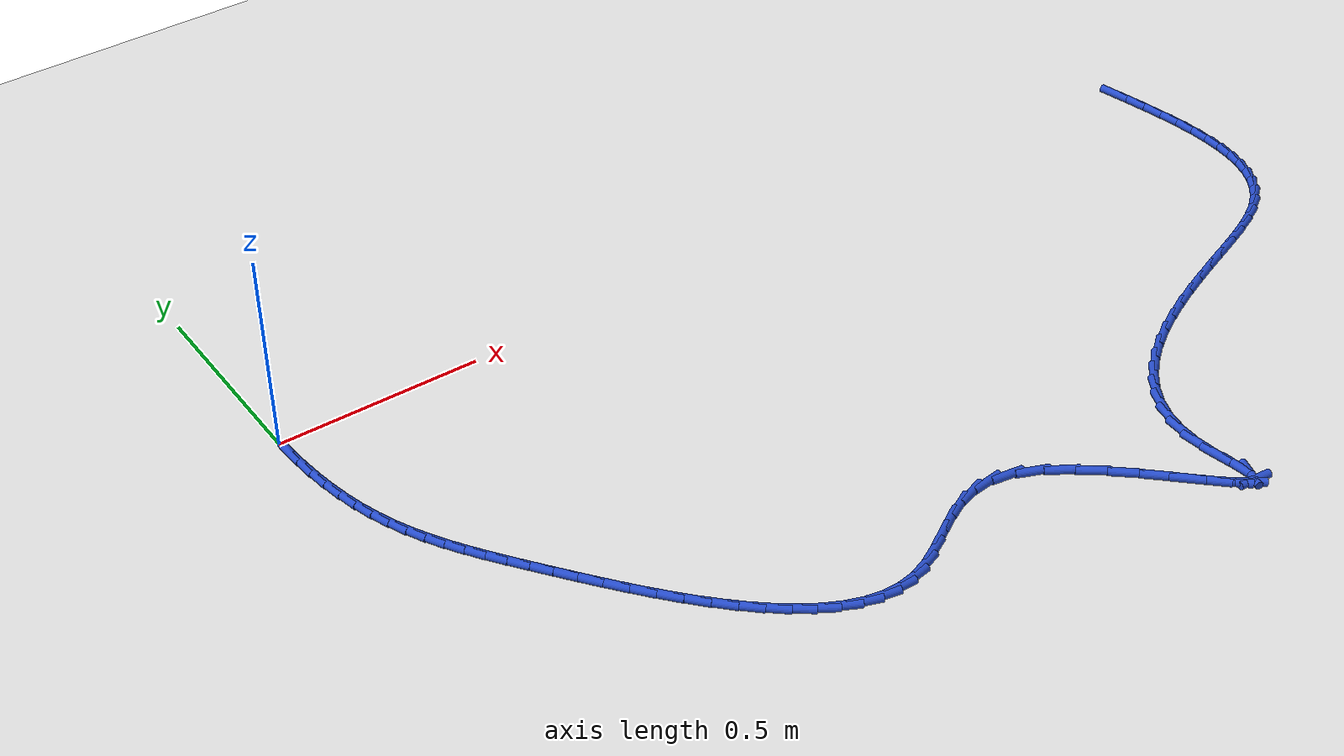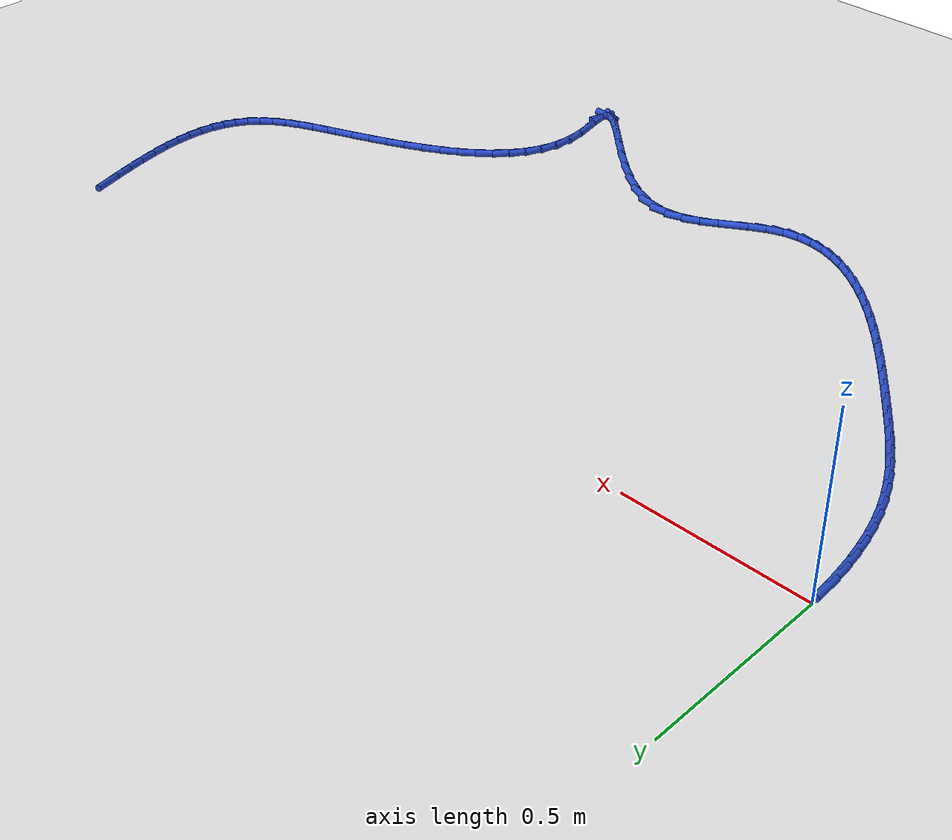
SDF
<sdf version="1.6">
 <world name="default">
  <model name="ground_plane">
   <static>1</static>
   <link name="link">
    <collision name="collision">
     <geometry><plane><normal>0 0 1</normal><size>100 100</size></plane></geometry>
     <surface><friction><ode><mu>100</mu><mu2>50</mu2></ode></friction></surface>
    </collision>
    <visual name="visual">
     <cast_shadows>0</cast_shadows>
     <geometry><plane><normal>0 0 1</normal><size>100 100</size></plane></geometry>
     <material>
      <script><uri>file://media/materials/scripts/gazebo.material</uri><name>Gazebo/WhiteGlow</name></script>
     </material>
    </visual>
   </link>
  </model>
  <model name="line">
   <link name="link_84">
    <pose>2.407412451320678 -0.029367058300199554 0.01 0 1.57 -1.3262022830353422</pose>
    <collision name="collision">
     <geometry><cylinder><radius>0.01</radius><length>0.08</length></cylinder></geometry>
    </collision>
    <visual name="visual">
     <material>
      <script><name>Gazebo/Blue</name><uri>file://media/materials/scripts/gazebo.material</uri></script>
     </material>
     <geometry><cylinder><radius>0.01</radius><length>0.08</length></cylinder></geometry>
    </visual>
   </link>
   <link name="link_85">
    <pose>2.420557343026698 -0.08203270582056749 0.01 0 1.57 -1.3414787079102308</pose>
    <collision name="collision">
     <geometry><cylinder><radius>0.01</radius><length>0.08</length></cylinder></geometry>
    </collision>
    <visual name="visual">
     <material>
      <script><name>Gazebo/Blue</name><uri>file://media/materials/scripts/gazebo.material</uri></script>
     </material>
     <geometry><cylinder><radius>0.01</radius><length>0.08</length></cylinder></geometry>
    </visual>
   </link>
   <link name="link_86">
    <pose>2.4325047693627733 -0.13321614203620766 0.01 0 1.57 -1.3643246047842637</pose>
    <collision name="collision">
     <geometry><cylinder><radius>0.01</radius><length>0.08</length></cylinder></geometry>
    </collision>
    <visual name="visual">
     <material>
      <script><name>Gazebo/Blue</name><uri>file://media/materials/scripts/gazebo.material</uri></script>
     </material>
     <geometry><cylinder><radius>0.01</radius><length>0.08</length></cylinder></geometry>
    </visual>
   </link>
   <link name="link_87">
    <pose>2.442894268546636 -0.18281829103592753 0.01 0 1.57 -1.395834255935096</pose>
    <collision name="collision">
     <geometry><cylinder><radius>0.01</radius><length>0.08</length></cylinder></geometry>
    </collision>
    <visual name="visual">
     <material>
      <script><name>Gazebo/Blue</name><uri>file://media/materials/scripts/gazebo.material</uri></script>
     </material>
     <geometry><cylinder><radius>0.01</radius><length>0.08</length></cylinder></geometry>
    </visual>
   </link>
   <link name="link_88">
    <pose>2.451365378796018 -0.23074007690853465 0.01 0 1.57 -1.437394287183724</pose>
    <collision name="collision">
     <geometry><cylinder><radius>0.01</radius><length>0.08</length></cylinder></geometry>
    </collision>
    <visual name="visual">
     <material>
      <script><name>Gazebo/Blue</name><uri>file://media/materials/scripts/gazebo.material</uri></script>
     </material>
     <geometry><cylinder><radius>0.01</radius><length>0.08</length></cylinder></geometry>
    </visual>
   </link>
   <link name="link_89">
    <pose>2.4575576383286513 -0.2768824237428374 0.01 0 1.57 -1.4907005499231647</pose>
    <collision name="collision">
     <geometry><cylinder><radius>0.01</radius><length>0.08</length></cylinder></geometry>
    </collision>
    <visual name="visual">
     <material>
      <script><name>Gazebo/Blue</name><uri>file://media/materials/scripts/gazebo.material</uri></script>
     </material>
     <geometry><cylinder><radius>0.01</radius><length>0.08</length></cylinder></geometry>
    </visual>
   </link>
   <link name="link_90">
    <pose>2.4611105853622677 -0.32114625562764143 0.01 0 1.57 -1.5577154478244069</pose>
    <collision name="collision">
     <geometry><cylinder><radius>0.01</radius><length>0.08</length></cylinder></geometry>
    </collision>
    <visual name="visual">
     <material>
      <script><name>Gazebo/Blue</name><uri>file://media/materials/scripts/gazebo.material</uri></script>
     </material>
     <geometry><cylinder><radius>0.01</radius><length>0.08</length></cylinder></geometry>
    </visual>
   </link>
   <link name="link_91">
    <pose>2.4616637581145993 -0.36343249665175537 0.01 0 1.57 1.5010985861466253</pose>
    <collision name="collision">
     <geometry><cylinder><radius>0.01</radius><length>0.08</length></cylinder></geometry>
    </collision>
    <visual name="visual">
     <material>
      <script><name>Gazebo/Blue</name><uri>file://media/materials/scripts/gazebo.material</uri></script>
     </material>
     <geometry><cylinder><radius>0.01</radius><length>0.08</length></cylinder></geometry>
    </visual>
   </link>
   <link name="link_92">
    <pose>2.4588566948033788 -0.40364207090398674 0.01 0 1.57 1.4008220073298887</pose>
    <collision name="collision">
     <geometry><cylinder><radius>0.01</radius><length>0.08</length></cylinder></geometry>
    </collision>
    <visual name="visual">
     <material>
      <script><name>Gazebo/Blue</name><uri>file://media/materials/scripts/gazebo.material</uri></script>
     </material>
     <geometry><cylinder><radius>0.01</radius><length>0.08</length></cylinder></geometry>
    </visual>
   </link>
   <link name="link_93">
    <pose>2.452328933646337 -0.4416759024731428 0.01 0 1.57 1.2823898041812418</pose>
    <collision name="collision">
     <geometry><cylinder><radius>0.01</radius><length>0.08</length></cylinder></geometry>
    </collision>
    <visual name="visual">
     <material>
      <script><name>Gazebo/Blue</name><uri>file://media/materials/scripts/gazebo.material</uri></script>
     </material>
     <geometry><cylinder><radius>0.01</radius><length>0.08</length></cylinder></geometry>
    </visual>
   </link>
   <link name="link_94">
    <pose>2.4417200128612064 -0.47743491544803196 0.01 0 1.57 1.1472641055934394</pose>
    <collision name="collision">
     <geometry><cylinder><radius>0.01</radius><length>0.08</length></cylinder></geometry>
    </collision>
    <visual name="visual">
     <material>
      <script><name>Gazebo/Blue</name><uri>file://media/materials/scripts/gazebo.material</uri></script>
     </material>
     <geometry><cylinder><radius>0.01</radius><length>0.08</length></cylinder></geometry>
    </visual>
   </link>
   <link name="link_95">
    <pose>2.4266694706657193 -0.5108200339174603 0.01 0 1.57 0.999904639473002</pose>
    <collision name="collision">
     <geometry><cylinder><radius>0.01</radius><length>0.08</length></cylinder></geometry>
    </collision>
    <visual name="visual">
     <material>
      <script><name>Gazebo/Blue</name><uri>file://media/materials/scripts/gazebo.material</uri></script>
     </material>
     <geometry><cylinder><radius>0.01</radius><length>0.08</length></cylinder></geometry>
    </visual>
   </link>
   <link name="link_96">
    <pose>2.406816845277607 -0.5417321819702361 0.01 0 1.57 0.8476345129484802</pose>
    <collision name="collision">
     <geometry><cylinder><radius>0.01</radius><length>0.08</length></cylinder></geometry>
    </collision>
    <visual name="visual">
     <material>
      <script><name>Gazebo/Blue</name><uri>file://media/materials/scripts/gazebo.material</uri></script>
     </material>
     <geometry><cylinder><radius>0.01</radius><length>0.08</length></cylinder></geometry>
    </visual>
   </link>
   <link name="link_97">
    <pose>2.3818016749146014 -0.5700722836951666 0.01 0 1.57 0.6989844136253545</pose>
    <collision name="collision">
     <geometry><cylinder><radius>0.01</radius><length>0.08</length></cylinder></geometry>
    </collision>
    <visual name="visual">
     <material>
      <script><name>Gazebo/Blue</name><uri>file://media/materials/scripts/gazebo.material</uri></script>
     </material>
     <geometry><cylinder><radius>0.01</radius><length>0.08</length></cylinder></geometry>
    </visual>
   </link>
   <link name="link_98">
    <pose>2.351263498076662 -0.595741263360394 0.01 0 1.57 0.5670089102678897</pose>
    <collision name="collision">
     <geometry><cylinder><radius>0.01</radius><length>0.08</length></cylinder></geometry>
    </collision>
    <visual name="visual">
     <material>
      <script><name>Gazebo/Blue</name><uri>file://media/materials/scripts/gazebo.material</uri></script>
     </material>
     <geometry><cylinder><radius>0.01</radius><length>0.08</length></cylinder></geometry>
    </visual>
   </link>
   <link name="link_99">
    <pose>2.31507212106486 -0.6187863638185385 0.01 0 1.57 0.47321113244959845</pose>
    <collision name="collision">
     <geometry><cylinder><radius>0.01</radius><length>0.08</length></cylinder></geometry>
    </collision>
    <visual name="visual">
     <material>
      <script><name>Gazebo/Blue</name><uri>file://media/materials/scripts/gazebo.material</uri></script>
     </material>
     <geometry><cylinder><radius>0.01</radius><length>0.08</length></cylinder></geometry>
    </visual>
   </link>
   <link name="link_100">
    <pose>2.273989014239891 -0.6398214161399439 0.01 0 1.57 0.41407909613685645</pose>
    <collision name="collision">
     <geometry><cylinder><radius>0.01</radius><length>0.08</length></cylinder></geometry>
    </collision>
    <visual name="visual">
     <material>
      <script><name>Gazebo/Blue</name><uri>file://media/materials/scripts/gazebo.material</uri></script>
     </material>
     <geometry><cylinder><radius>0.01</radius><length>0.08</length></cylinder></geometry>
    </visual>
   </link>
   <link name="link_101">
    <pose>2.2289914454468844 -0.6595973751365465 0.01 0 1.57 0.38219422823161187</pose>
    <collision name="collision">
     <geometry><cylinder><radius>0.01</radius><length>0.08</length></cylinder></geometry>
    </collision>
    <visual name="visual">
     <material>
      <script><name>Gazebo/Blue</name><uri>file://media/materials/scripts/gazebo.material</uri></script>
     </material>
     <geometry><cylinder><radius>0.01</radius><length>0.08</length></cylinder></geometry>
    </visual>
   </link>
   <link name="link_102">
    <pose>2.1810566825309703 -0.6788651956202815 0.01 0 1.57 0.3725993986495448</pose>
    <collision name="collision">
     <geometry><cylinder><radius>0.01</radius><length>0.08</length></cylinder></geometry>
    </collision>
    <visual name="visual">
     <material>
      <script><name>Gazebo/Blue</name><uri>file://media/materials/scripts/gazebo.material</uri></script>
     </material>
     <geometry><cylinder><radius>0.01</radius><length>0.08</length></cylinder></geometry>
    </visual>
   </link>
   <link name="link_103">
    <pose>2.1311581218048334 -0.6983683790570466 0.01 0 1.57 0.3779899216843693</pose>
    <collision name="collision">
     <geometry><cylinder><radius>0.01</radius><length>0.08</length></cylinder></geometry>
    </collision>
    <visual name="visual">
     <material>
      <script><name>Gazebo/Blue</name><uri>file://media/materials/scripts/gazebo.material</uri></script>
     </material>
     <geometry><cylinder><radius>0.01</radius><length>0.08</length></cylinder></geometry>
    </visual>
   </link>
   <link name="link_104">
    <pose>2.080150798857192 -0.7186225627672098 0.01 0 1.57 0.3921412368306083</pose>
    <collision name="collision">
     <geometry><cylinder><radius>0.01</radius><length>0.08</length></cylinder></geometry>
    </collision>
    <visual name="visual">
     <material>
      <script><name>Gazebo/Blue</name><uri>file://media/materials/scripts/gazebo.material</uri></script>
     </material>
     <geometry><cylinder><radius>0.01</radius><length>0.08</length></cylinder></geometry>
    </visual>
   </link>
   <link name="link_105">
    <pose>2.028752369596476 -0.7398789052608171 0.01 0 1.57 0.4148318584975114</pose>
    <collision name="collision">
     <geometry><cylinder><radius>0.01</radius><length>0.08</length></cylinder></geometry>
    </collision>
    <visual name="visual">
     <material>
      <script><name>Gazebo/Blue</name><uri>file://media/materials/scripts/gazebo.material</uri></script>
     </material>
     <geometry><cylinder><radius>0.01</radius><length>0.08</length></cylinder></geometry>
    </visual>
   </link>
   <link name="link_106">
    <pose>1.9776727881111134 -0.7623737377591456 0.01 0 1.57 0.44663102379731207</pose>
    <collision name="collision">
     <geometry><cylinder><radius>0.01</radius><length>0.08</length></cylinder></geometry>
    </collision>
    <visual name="visual">
     <material>
      <script><name>Gazebo/Blue</name><uri>file://media/materials/scripts/gazebo.material</uri></script>
     </material>
     <geometry><cylinder><radius>0.01</radius><length>0.08</length></cylinder></geometry>
    </visual>
   </link>
   <link name="link_107">
    <pose>1.9276220084895328 -0.7863433914834724 0.01 0 1.57 0.48857676614189344</pose>
    <collision name="collision">
     <geometry><cylinder><radius>0.01</radius><length>0.08</length></cylinder></geometry>
    </collision>
    <visual name="visual">
     <material>
      <script><name>Gazebo/Blue</name><uri>file://media/materials/scripts/gazebo.material</uri></script>
     </material>
     <geometry><cylinder><radius>0.01</radius><length>0.08</length></cylinder></geometry>
    </visual>
   </link>
   <link name="link_108">
    <pose>1.8793099848201635 -0.8120241976550742 0.01 0 1.57 0.5421860127665913</pose>
    <collision name="collision">
     <geometry><cylinder><radius>0.01</radius><length>0.08</length></cylinder></geometry>
    </collision>
    <visual name="visual">
     <material>
      <script><name>Gazebo/Blue</name><uri>file://media/materials/scripts/gazebo.material</uri></script>
     </material>
     <geometry><cylinder><radius>0.01</radius><length>0.08</length></cylinder></geometry>
    </visual>
   </link>
   <link name="link_109">
    <pose>1.8334466711914335 -0.8396524874952278 0.01 0 1.57 0.6094494835099252</pose>
    <collision name="collision">
     <geometry><cylinder><radius>0.01</radius><length>0.08</length></cylinder></geometry>
    </collision>
    <visual name="visual">
     <material>
      <script><name>Gazebo/Blue</name><uri>file://media/materials/scripts/gazebo.material</uri></script>
     </material>
     <geometry><cylinder><radius>0.01</radius><length>0.08</length></cylinder></geometry>
    </visual>
   </link>
   <link name="link_110">
    <pose>1.7907420216917722 -0.8694645922252112 0.01 0 1.57 0.6927426005533729</pose>
    <collision name="collision">
     <geometry><cylinder><radius>0.01</radius><length>0.08</length></cylinder></geometry>
    </collision>
    <visual name="visual">
     <material>
      <script><name>Gazebo/Blue</name><uri>file://media/materials/scripts/gazebo.material</uri></script>
     </material>
     <geometry><cylinder><radius>0.01</radius><length>0.08</length></cylinder></geometry>
    </visual>
   </link>
   <link name="link_111">
    <pose>1.751905990409609 -0.9016968430662997 0.01 0 1.57 0.794527396488829</pose>
    <collision name="collision">
     <geometry><cylinder><radius>0.01</radius><length>0.08</length></cylinder></geometry>
    </collision>
    <visual name="visual">
     <material>
      <script><name>Gazebo/Blue</name><uri>file://media/materials/scripts/gazebo.material</uri></script>
     </material>
     <geometry><cylinder><radius>0.01</radius><length>0.08</length></cylinder></geometry>
    </visual>
   </link>
   <link name="link_112">
    <pose>1.7176485314333727 -0.9365855712397713 0.01 0 1.57 0.9166621320752574</pose>
    <collision name="collision">
     <geometry><cylinder><radius>0.01</radius><length>0.08</length></cylinder></geometry>
    </collision>
    <visual name="visual">
     <material>
      <script><name>Gazebo/Blue</name><uri>file://media/materials/scripts/gazebo.material</uri></script>
     </material>
     <geometry><cylinder><radius>0.01</radius><length>0.08</length></cylinder></geometry>
    </visual>
   </link>
   <link name="link_113">
    <pose>1.688679598851491 -0.974367107966902 0.01 0 1.57 1.0591834263343425</pose>
    <collision name="collision">
     <geometry><cylinder><radius>0.01</radius><length>0.08</length></cylinder></geometry>
    </collision>
    <visual name="visual">
     <material>
      <script><name>Gazebo/Blue</name><uri>file://media/materials/scripts/gazebo.material</uri></script>
     </material>
     <geometry><cylinder><radius>0.01</radius><length>0.08</length></cylinder></geometry>
    </visual>
   </link>
   <link name="link_114">
    <pose>1.6657091467523943 -1.0152777844689698 0.01 0 1.57 1.2188055392270327</pose>
    <collision name="collision">
     <geometry><cylinder><radius>0.01</radius><length>0.08</length></cylinder></geometry>
    </collision>
    <visual name="visual">
     <material>
      <script><name>Gazebo/Blue</name><uri>file://media/materials/scripts/gazebo.material</uri></script>
     </material>
     <geometry><cylinder><radius>0.01</radius><length>0.08</length></cylinder></geometry>
    </visual>
   </link>
   <link name="link_115">
    <pose>1.6494471292245105 -1.0595539319672518 0.01 0 1.57 1.3881431044658892</pose>
    <collision name="collision">
     <geometry><cylinder><radius>0.01</radius><length>0.08</length></cylinder></geometry>
    </collision>
    <visual name="visual">
     <material>
      <script><name>Gazebo/Blue</name><uri>file://media/materials/scripts/gazebo.material</uri></script>
     </material>
     <geometry><cylinder><radius>0.01</radius><length>0.08</length></cylinder></geometry>
    </visual>
   </link>
   <link name="link_116">
    <pose>1.6406035003562687 -1.1074318816830235 0.01 0 1.57 1.5569661898034282</pose>
    <collision name="collision">
     <geometry><cylinder><radius>0.01</radius><length>0.08</length></cylinder></geometry>
    </collision>
    <visual name="visual">
     <material>
      <script><name>Gazebo/Blue</name><uri>file://media/materials/scripts/gazebo.material</uri></script>
     </material>
     <geometry><cylinder><radius>0.01</radius><length>0.08</length></cylinder></geometry>
    </visual>
   </link>
   <link name="link_117">
    <pose>1.6398882142360978 -1.1591479648375622 0.01 0 1.57 -1.438728830981813</pose>
    <collision name="collision">
     <geometry><cylinder><radius>0.01</radius><length>0.08</length></cylinder></geometry>
    </collision>
    <visual name="visual">
     <material>
      <script><name>Gazebo/Blue</name><uri>file://media/materials/scripts/gazebo.material</uri></script>
     </material>
     <geometry><cylinder><radius>0.01</radius><length>0.08</length></cylinder></geometry>
    </visual>
   </link>
   <link name="link_118">
    <pose>1.6471673300019452 -1.2139437802584154 0.01 0 1.57 -1.3777797056841126</pose>
    <collision name="collision">
     <geometry><cylinder><radius>0.01</radius><length>0.08</length></cylinder></geometry>
    </collision>
    <visual name="visual">
     <material>
      <script><name>Gazebo/Blue</name><uri>file://media/materials/scripts/gazebo.material</uri></script>
     </material>
     <geometry><cylinder><radius>0.01</radius><length>0.08</length></cylinder></geometry>
    </visual>
   </link>
   <link name="link_119">
    <pose>1.6571406406949947 -1.2649712443569114 0.01 0 1.57 -1.4296933009319104</pose>
    <collision name="collision">
     <geometry><cylinder><radius>0.01</radius><length>0.08</length></cylinder></geometry>
    </collision>
    <visual name="visual">
     <material>
      <script><name>Gazebo/Blue</name><uri>file://media/materials/scripts/gazebo.material</uri></script>
     </material>
     <geometry><cylinder><radius>0.01</radius><length>0.08</length></cylinder></geometry>
    </visual>
   </link>
   <link name="link_120">
    <pose>1.6625536944198755 -1.3030787276556821 0.01 0 1.57 1.291564477316992</pose>
    <collision name="collision">
     <geometry><cylinder><radius>0.01</radius><length>0.08</length></cylinder></geometry>
    </collision>
    <visual name="visual">
     <material>
      <script><name>Gazebo/Blue</name><uri>file://media/materials/scripts/gazebo.material</uri></script>
     </material>
     <geometry><cylinder><radius>0.01</radius><length>0.08</length></cylinder></geometry>
    </visual>
   </link>
   <link name="link_121">
    <pose>1.6574233983420692 -1.3209716030088101 0.01 0 1.57 -0.07983674472853812</pose>
    <collision name="collision">
     <geometry><cylinder><radius>0.01</radius><length>0.08</length></cylinder></geometry>
    </collision>
    <visual name="visual">
     <material>
      <script><name>Gazebo/Blue</name><uri>file://media/materials/scripts/gazebo.material</uri></script>
     </material>
     <geometry><cylinder><radius>0.01</radius><length>0.08</length></cylinder></geometry>
    </visual>
   </link>
   <link name="link_122">
    <pose>1.6414801854416594 -1.319696037526616 0.01 0 1.57 -0.5910417228954408</pose>
    <collision name="collision">
     <geometry><cylinder><radius>0.01</radius><length>0.08</length></cylinder></geometry>
    </collision>
    <visual name="visual">
     <material>
      <script><name>Gazebo/Blue</name><uri>file://media/materials/scripts/gazebo.material</uri></script>
     </material>
     <geometry><cylinder><radius>0.01</radius><length>0.08</length></cylinder></geometry>
    </visual>
   </link>
   <link name="link_123">
    <pose>1.6160542351990004 -1.3026335612553477 0.01 0 1.57 -0.7202891151814214</pose>
    <collision name="collision">
     <geometry><cylinder><radius>0.01</radius><length>0.08</length></cylinder></geometry>
    </collision>
    <visual name="visual">
     <material>
      <script><name>Gazebo/Blue</name><uri>file://media/materials/scripts/gazebo.material</uri></script>
     </material>
     <geometry><cylinder><radius>0.01</radius><length>0.08</length></cylinder></geometry>
    </visual>
   </link>
   <link name="link_124">
    <pose>1.5824758045735545 -1.273165817347822 0.01 0 1.57 -0.7612016353690153</pose>
    <collision name="collision">
     <geometry><cylinder><radius>0.01</radius><length>0.08</length></cylinder></geometry>
    </collision>
    <visual name="visual">
     <material>
      <script><name>Gazebo/Blue</name><uri>file://media/materials/scripts/gazebo.material</uri></script>
     </material>
     <geometry><cylinder><radius>0.01</radius><length>0.08</length></cylinder></geometry>
    </visual>
   </link>
   <link name="link_125">
    <pose>1.5420751505247865 -1.2346744489568586 0.01 0 1.57 -0.7658588361027399</pose>
    <collision name="collision">
     <geometry><cylinder><radius>0.01</radius><length>0.08</length></cylinder></geometry>
    </collision>
    <visual name="visual">
     <material>
      <script><name>Gazebo/Blue</name><uri>file://media/materials/scripts/gazebo.material</uri></script>
     </material>
     <geometry><cylinder><radius>0.01</radius><length>0.08</length></cylinder></geometry>
    </visual>
   </link>
   <link name="link_126">
    <pose>1.4961825300121576 -1.1905410992352738 0.01 0 1.57 -0.7474618124310993</pose>
    <collision name="collision">
     <geometry><cylinder><radius>0.01</radius><length>0.08</length></cylinder></geometry>
    </collision>
    <visual name="visual">
     <material>
      <script><name>Gazebo/Blue</name><uri>file://media/materials/scripts/gazebo.material</uri></script>
     </material>
     <geometry><cylinder><radius>0.01</radius><length>0.08</length></cylinder></geometry>
    </visual>
   </link>
   <link name="link_127">
    <pose>1.4461281999951332 -1.1441474113358876 0.01 0 1.57 -0.7079905713807227</pose>
    <collision name="collision">
     <geometry><cylinder><radius>0.01</radius><length>0.08</length></cylinder></geometry>
    </collision>
    <visual name="visual">
     <material>
      <script><name>Gazebo/Blue</name><uri>file://media/materials/scripts/gazebo.material</uri></script>
     </material>
     <geometry><cylinder><radius>0.01</radius><length>0.08</length></cylinder></geometry>
    </visual>
   </link>
   <link name="link_128">
    <pose>1.3932424174331761 -1.0988750284115174 0.01 0 1.57 -0.6432563133465143</pose>
    <collision name="collision">
     <geometry><cylinder><radius>0.01</radius><length>0.08</length></cylinder></geometry>
    </collision>
    <visual name="visual">
     <material>
      <script><name>Gazebo/Blue</name><uri>file://media/materials/scripts/gazebo.material</uri></script>
     </material>
     <geometry><cylinder><radius>0.01</radius><length>0.08</length></cylinder></geometry>
    </visual>
   </link>
   <link name="link_129">
    <pose>1.33885543928575 -1.0581055936149815 0.01 0 1.57 -0.5424399017491787</pose>
    <collision name="collision">
     <geometry><cylinder><radius>0.01</radius><length>0.08</length></cylinder></geometry>
    </collision>
    <visual name="visual">
     <material>
      <script><name>Gazebo/Blue</name><uri>file://media/materials/scripts/gazebo.material</uri></script>
     </material>
     <geometry><cylinder><radius>0.01</radius><length>0.08</length></cylinder></geometry>
    </visual>
   </link>
   <link name="link_130">
    <pose>1.2842975225123172 -1.0252207500990977 0.01 0 1.57 -0.3846834074348056</pose>
    <collision name="collision">
     <geometry><cylinder><radius>0.01</radius><length>0.08</length></cylinder></geometry>
    </collision>
    <visual name="visual">
     <material>
      <script><name>Gazebo/Blue</name><uri>file://media/materials/scripts/gazebo.material</uri></script>
     </material>
     <geometry><cylinder><radius>0.01</radius><length>0.08</length></cylinder></geometry>
    </visual>
   </link>
   <link name="link_131">
    <pose>1.230898924072341 -1.0036021410166844 0.01 0 1.57 -0.14161699977885908</pose>
    <collision name="collision">
     <geometry><cylinder><radius>0.01</radius><length>0.08</length></cylinder></geometry>
    </collision>
    <visual name="visual">
     <material>
      <script><name>Gazebo/Blue</name><uri>file://media/materials/scripts/gazebo.material</uri></script>
     </material>
     <geometry><cylinder><radius>0.01</radius><length>0.08</length></cylinder></geometry>
    </visual>
   </link>
   <link name="link_132">
    <pose>1.1799123647796166 -0.996332916690253 0.01 0 1.57 0.13021133741301286</pose>
    <collision name="collision">
     <geometry><cylinder><radius>0.01</radius><length>0.08</length></cylinder></geometry>
    </collision>
    <visual name="visual">
     <material>
      <script><name>Gazebo/Blue</name><uri>file://media/materials/scripts/gazebo.material</uri></script>
     </material>
     <geometry><cylinder><radius>0.01</radius><length>0.08</length></cylinder></geometry>
    </visual>
   </link>
   <link name="link_133">
    <pose>1.131594148664967 -1.0026602969463252 0.01 0 1.57 0.3440238367944932</pose>
    <collision name="collision">
     <geometry><cylinder><radius>0.01</radius><length>0.08</length></cylinder></geometry>
    </collision>
    <visual name="visual">
     <material>
      <script><name>Gazebo/Blue</name><uri>file://media/materials/scripts/gazebo.material</uri></script>
     </material>
     <geometry><cylinder><radius>0.01</radius><length>0.08</length></cylinder></geometry>
    </visual>
   </link>
   <link name="link_134">
    <pose>1.0855095098312202 -1.0191710725048886 0.01 0 1.57 0.48291826576697033</pose>
    <collision name="collision">
     <geometry><cylinder><radius>0.01</radius><length>0.08</length></cylinder></geometry>
    </collision>
    <visual name="visual">
     <material>
      <script><name>Gazebo/Blue</name><uri>file://media/materials/scripts/gazebo.material</uri></script>
     </material>
     <geometry><cylinder><radius>0.01</radius><length>0.08</length></cylinder></geometry>
    </visual>
   </link>
   <link name="link_135">
    <pose>1.0412097906160753 -1.042398554611864 0.01 0 1.57 0.5523038354616163</pose>
    <collision name="collision">
     <geometry><cylinder><radius>0.01</radius><length>0.08</length></cylinder></geometry>
    </collision>
    <visual name="visual">
     <material>
      <script><name>Gazebo/Blue</name><uri>file://media/materials/scripts/gazebo.material</uri></script>
     </material>
     <geometry><cylinder><radius>0.01</radius><length>0.08</length></cylinder></geometry>
    </visual>
   </link>
   <link name="link_136">
    <pose>0.9982463333572306 -1.068876054513173 0.01 0 1.57 0.5579739116379103</pose>
    <collision name="collision">
     <geometry><cylinder><radius>0.01</radius><length>0.08</length></cylinder></geometry>
    </collision>
    <visual name="visual">
     <material>
      <script><name>Gazebo/Blue</name><uri>file://media/materials/scripts/gazebo.material</uri></script>
     </material>
     <geometry><cylinder><radius>0.01</radius><length>0.08</length></cylinder></geometry>
    </visual>
   </link>
   <link name="link_137">
    <pose>0.9561704803923863 -1.0951368834547355 0.01 0 1.57 0.4968709915701198</pose>
    <collision name="collision">
     <geometry><cylinder><radius>0.01</radius><length>0.08</length></cylinder></geometry>
    </collision>
    <visual name="visual">
     <material>
      <script><name>Gazebo/Blue</name><uri>file://media/materials/scripts/gazebo.material</uri></script>
     </material>
     <geometry><cylinder><radius>0.01</radius><length>0.08</length></cylinder></geometry>
    </visual>
   </link>
   <link name="link_138">
    <pose>0.9145335740592405 -1.1177143526824729 0.01 0 1.57 0.3566478568228332</pose>
    <collision name="collision">
     <geometry><cylinder><radius>0.01</radius><length>0.08</length></cylinder></geometry>
    </collision>
    <visual name="visual">
     <material>
      <script><name>Gazebo/Blue</name><uri>file://media/materials/scripts/gazebo.material</uri></script>
     </material>
     <geometry><cylinder><radius>0.01</radius><length>0.08</length></cylinder></geometry>
    </visual>
   </link>
   <link name="link_139">
    <pose>0.8728983355937338 -1.1332268343223741 0.01 0 1.57 0.16671667078774588</pose>
    <collision name="collision">
     <geometry><cylinder><radius>0.01</radius><length>0.08</length></cylinder></geometry>
    </collision>
    <visual name="visual">
     <material>
      <script><name>Gazebo/Blue</name><uri>file://media/materials/scripts/gazebo.material</uri></script>
     </material>
     <geometry><cylinder><radius>0.01</radius><length>0.08</length></cylinder></geometry>
    </visual>
   </link>
   <link name="link_140">
    <pose>0.8310909432418279 -1.1402621253653662 0.01 0 1.57 -0.02094314707830324</pose>
    <collision name="collision">
     <geometry><cylinder><radius>0.01</radius><length>0.08</length></cylinder></geometry>
    </collision>
    <visual name="visual">
     <material>
      <script><name>Gazebo/Blue</name><uri>file://media/materials/scripts/gazebo.material</uri></script>
     </material>
     <geometry><cylinder><radius>0.01</radius><length>0.08</length></cylinder></geometry>
    </visual>
   </link>
   <link name="link_141">
    <pose>0.7892020038829335 -1.13938471086116 0.01 0 1.57 -0.19200341347393873</pose>
    <collision name="collision">
     <geometry><cylinder><radius>0.01</radius><length>0.08</length></cylinder></geometry>
    </collision>
    <visual name="visual">
     <material>
      <script><name>Gazebo/Blue</name><uri>file://media/materials/scripts/gazebo.material</uri></script>
     </material>
     <geometry><cylinder><radius>0.01</radius><length>0.08</length></cylinder></geometry>
    </visual>
   </link>
   <link name="link_142">
    <pose>0.7473336976202118 -1.1312455893844766 0.01 0 1.57 -0.3396360859743176</pose>
    <collision name="collision">
     <geometry><cylinder><radius>0.01</radius><length>0.08</length></cylinder></geometry>
    </collision>
    <visual name="visual">
     <material>
      <script><name>Gazebo/Blue</name><uri>file://media/materials/scripts/gazebo.material</uri></script>
     </material>
     <geometry><cylinder><radius>0.01</radius><length>0.08</length></cylinder></geometry>
    </visual>
   </link>
   <link name="link_143">
    <pose>0.7055882045568267 -1.1164957595100369 0.01 0 1.57 -0.4626700686969642</pose>
    <collision name="collision">
     <geometry><cylinder><radius>0.01</radius><length>0.08</length></cylinder></geometry>
    </collision>
    <visual name="visual">
     <material>
      <script><name>Gazebo/Blue</name><uri>file://media/materials/scripts/gazebo.material</uri></script>
     </material>
     <geometry><cylinder><radius>0.01</radius><length>0.08</length></cylinder></geometry>
    </visual>
   </link>
   <link name="link_144">
    <pose>0.6640677047959397 -1.095786219812562 0.01 0 1.57 -0.5633407860131767</pose>
    <collision name="collision">
     <geometry><cylinder><radius>0.01</radius><length>0.08</length></cylinder></geometry>
    </collision>
    <visual name="visual">
     <material>
      <script><name>Gazebo/Blue</name><uri>file://media/materials/scripts/gazebo.material</uri></script>
     </material>
     <geometry><cylinder><radius>0.01</radius><length>0.08</length></cylinder></geometry>
    </visual>
   </link>
   <link name="link_145">
    <pose>0.622874378440713 -1.0697679688667725 0.01 0 1.57 -0.6451160118521898</pose>
    <collision name="collision">
     <geometry><cylinder><radius>0.01</radius><length>0.08</length></cylinder></geometry>
    </collision>
    <visual name="visual">
     <material>
      <script><name>Gazebo/Blue</name><uri>file://media/materials/scripts/gazebo.material</uri></script>
     </material>
     <geometry><cylinder><radius>0.01</radius><length>0.08</length></cylinder></geometry>
    </visual>
   </link>
   <link name="link_146">
    <pose>0.5821104055943092 -1.0390920052473895 0.01 0 1.57 -0.7114525729906077</pose>
    <collision name="collision">
     <geometry><cylinder><radius>0.01</radius><length>0.08</length></cylinder></geometry>
    </collision>
    <visual name="visual">
     <material>
      <script><name>Gazebo/Blue</name><uri>file://media/materials/scripts/gazebo.material</uri></script>
     </material>
     <geometry><cylinder><radius>0.01</radius><length>0.08</length></cylinder></geometry>
    </visual>
   </link>
   <link name="link_147">
    <pose>0.5418779663598896 -1.0044093275291328 0.01 0 1.57 -0.7653031074563491</pose>
    <collision name="collision">
     <geometry><cylinder><radius>0.01</radius><length>0.08</length></cylinder></geometry>
    </collision>
    <visual name="visual">
     <material>
      <script><name>Gazebo/Blue</name><uri>file://media/materials/scripts/gazebo.material</uri></script>
     </material>
     <geometry><cylinder><radius>0.01</radius><length>0.08</length></cylinder></geometry>
    </visual>
   </link>
   <link name="link_148">
    <pose>0.5022792408406183 -0.9663709342867253 0.01 0 1.57 -0.8090135983317046</pose>
    <collision name="collision">
     <geometry><cylinder><radius>0.01</radius><length>0.08</length></cylinder></geometry>
    </collision>
    <visual name="visual">
     <material>
      <script><name>Gazebo/Blue</name><uri>file://media/materials/scripts/gazebo.material</uri></script>
     </material>
     <geometry><cylinder><radius>0.01</radius><length>0.08</length></cylinder></geometry>
    </visual>
   </link>
   <link name="link_149">
    <pose>0.4634164091396566 -0.9256278240948866 0.01 0 1.57 -0.8443741996710217</pose>
    <collision name="collision">
     <geometry><cylinder><radius>0.01</radius><length>0.08</length></cylinder></geometry>
    </collision>
    <visual name="visual">
     <material>
      <script><name>Gazebo/Blue</name><uri>file://media/materials/scripts/gazebo.material</uri></script>
     </material>
     <geometry><cylinder><radius>0.01</radius><length>0.08</length></cylinder></geometry>
    </visual>
   </link>
   <link name="link_150">
    <pose>0.42539165136016693 -0.8828309955283382 0.01 0 1.57 -0.8727087192490836</pose>
    <collision name="collision">
     <geometry><cylinder><radius>0.01</radius><length>0.08</length></cylinder></geometry>
    </collision>
    <visual name="visual">
     <material>
      <script><name>Gazebo/Blue</name><uri>file://media/materials/scripts/gazebo.material</uri></script>
     </material>
     <geometry><cylinder><radius>0.01</radius><length>0.08</length></cylinder></geometry>
    </visual>
   </link>
   <link name="link_151">
    <pose>0.38830714760531176 -0.8386314471618006 0.01 0 1.57 -0.8949568685711173</pose>
    <collision name="collision">
     <geometry><cylinder><radius>0.01</radius><length>0.08</length></cylinder></geometry>
    </collision>
    <visual name="visual">
     <material>
      <script><name>Gazebo/Blue</name><uri>file://media/materials/scripts/gazebo.material</uri></script>
     </material>
     <geometry><cylinder><radius>0.01</radius><length>0.08</length></cylinder></geometry>
    </visual>
   </link>
   <link name="link_152">
    <pose>0.3522650779782532 -0.7936801775699949 0.01 0 1.57 -0.9117336815539395</pose>
    <collision name="collision">
     <geometry><cylinder><radius>0.01</radius><length>0.08</length></cylinder></geometry>
    </collision>
    <visual name="visual">
     <material>
      <script><name>Gazebo/Blue</name><uri>file://media/materials/scripts/gazebo.material</uri></script>
     </material>
     <geometry><cylinder><radius>0.01</radius><length>0.08</length></cylinder></geometry>
    </visual>
   </link>
   <link name="link_153">
    <pose>0.317367622582153 -0.7486281853276412 0.01 0 1.57 -0.9233609831242662</pose>
    <collision name="collision">
     <geometry><cylinder><radius>0.01</radius><length>0.08</length></cylinder></geometry>
    </collision>
    <visual name="visual">
     <material>
      <script><name>Gazebo/Blue</name><uri>file://media/materials/scripts/gazebo.material</uri></script>
     </material>
     <geometry><cylinder><radius>0.01</radius><length>0.08</length></cylinder></geometry>
    </visual>
   </link>
   <link name="link_154">
    <pose>0.2837169615201748 -0.7041264690094619 0.01 0 1.57 -0.9299230836455556</pose>
    <collision name="collision">
     <geometry><cylinder><radius>0.01</radius><length>0.08</length></cylinder></geometry>
    </collision>
    <visual name="visual">
     <material>
      <script><name>Gazebo/Blue</name><uri>file://media/materials/scripts/gazebo.material</uri></script>
     </material>
     <geometry><cylinder><radius>0.01</radius><length>0.08</length></cylinder></geometry>
    </visual>
   </link>
   <link name="link_155">
    <pose>0.2514154182517103 -0.6608211258263027 0.01 0 1.57 -0.935608454112686</pose>
    <collision name="collision">
     <geometry><cylinder><radius>0.01</radius><length>0.08</length></cylinder></geometry>
    </collision>
    <visual name="visual">
     <material>
      <script><name>Gazebo/Blue</name><uri>file://media/materials/scripts/gazebo.material</uri></script>
     </material>
     <geometry><cylinder><radius>0.01</radius><length>0.08</length></cylinder></geometry>
    </visual>
   </link>
   <link name="link_156">
    <pose>0.22057631579014902 -0.6189821771353947 0.01 0 1.57 -0.948177687601253</pose>
    <collision name="collision">
     <geometry><cylinder><radius>0.01</radius><length>0.08</length></cylinder></geometry>
    </collision>
    <visual name="visual">
     <material>
      <script><name>Gazebo/Blue</name><uri>file://media/materials/scripts/gazebo.material</uri></script>
     </material>
     <geometry><cylinder><radius>0.01</radius><length>0.08</length></cylinder></geometry>
    </visual>
   </link>
   <link name="link_157">
    <pose>0.19133157036477405 -0.5782439403790121 0.01 0 1.57 -0.9689787757756867</pose>
    <collision name="collision">
     <geometry><cylinder><radius>0.01</radius><length>0.08</length></cylinder></geometry>
    </collision>
    <visual name="visual">
     <material>
      <script><name>Gazebo/Blue</name><uri>file://media/materials/scripts/gazebo.material</uri></script>
     </material>
     <geometry><cylinder><radius>0.01</radius><length>0.08</length></cylinder></geometry>
    </visual>
   </link>
   <link name="link_158">
    <pose>0.16381489275413774 -0.5381793771800425 0.01 0 1.57 -0.9984348870106444</pose>
    <collision name="collision">
     <geometry><cylinder><radius>0.01</radius><length>0.08</length></cylinder></geometry>
    </collision>
    <visual name="visual">
     <material>
      <script><name>Gazebo/Blue</name><uri>file://media/materials/scripts/gazebo.material</uri></script>
     </material>
     <geometry><cylinder><radius>0.01</radius><length>0.08</length></cylinder></geometry>
    </visual>
   </link>
   <link name="link_159">
    <pose>0.1381599937367938 -0.4983614491613762 0.01 0 1.57 -1.03664292209468</pose>
    <collision name="collision">
     <geometry><cylinder><radius>0.01</radius><length>0.08</length></cylinder></geometry>
    </collision>
    <visual name="visual">
     <material>
      <script><name>Gazebo/Blue</name><uri>file://media/materials/scripts/gazebo.material</uri></script>
     </material>
     <geometry><cylinder><radius>0.01</radius><length>0.08</length></cylinder></geometry>
    </visual>
   </link>
   <link name="link_160">
    <pose>0.11450058409129434 -0.4583631179459004 0.01 0 1.57 -1.0832618441300796</pose>
    <collision name="collision">
     <geometry><cylinder><radius>0.01</radius><length>0.08</length></cylinder></geometry>
    </collision>
    <visual name="visual">
     <material>
      <script><name>Gazebo/Blue</name><uri>file://media/materials/scripts/gazebo.material</uri></script>
     </material>
     <geometry><cylinder><radius>0.01</radius><length>0.08</length></cylinder></geometry>
    </visual>
   </link>
   <link name="link_161">
    <pose>0.0929703745961921 -0.4177573451565042 0.01 0 1.57 -1.137424418760781</pose>
    <collision name="collision">
     <geometry><cylinder><radius>0.01</radius><length>0.08</length></cylinder></geometry>
    </collision>
    <visual name="visual">
     <material>
      <script><name>Gazebo/Blue</name><uri>file://media/materials/scripts/gazebo.material</uri></script>
     </material>
     <geometry><cylinder><radius>0.01</radius><length>0.08</length></cylinder></geometry>
    </visual>
   </link>
   <link name="link_162">
    <pose>0.07370307603003977 -0.37611709241607566 0.01 0 1.57 -1.197281097646703</pose>
    <collision name="collision">
     <geometry><cylinder><radius>0.01</radius><length>0.08</length></cylinder></geometry>
    </collision>
    <visual name="visual">
     <material>
      <script><name>Gazebo/Blue</name><uri>file://media/materials/scripts/gazebo.material</uri></script>
     </material>
     <geometry><cylinder><radius>0.01</radius><length>0.08</length></cylinder></geometry>
    </visual>
   </link>
   <link name="link_163">
    <pose>0.056821902393447504 -0.33304328698570806 0.01 0 1.57 -1.256182716874249</pose>
    <collision name="collision">
     <geometry><cylinder><radius>0.01</radius><length>0.08</length></cylinder></geometry>
    </collision>
    <visual name="visual">
     <material>
      <script><name>Gazebo/Blue</name><uri>file://media/materials/scripts/gazebo.material</uri></script>
     </material>
     <geometry><cylinder><radius>0.01</radius><length>0.08</length></cylinder></geometry>
    </visual>
   </link>
   <link name="link_164">
    <pose>0.04232060311282752 -0.28848177715487094 0.01 0 1.57 -1.310548202682827</pose>
    <collision name="collision">
     <geometry><cylinder><radius>0.01</radius><length>0.08</length></cylinder></geometry>
    </collision>
    <visual name="visual">
     <material>
      <script><name>Gazebo/Blue</name><uri>file://media/materials/scripts/gazebo.material</uri></script>
     </material>
     <geometry><cylinder><radius>0.01</radius><length>0.08</length></cylinder></geometry>
    </visual>
   </link>
   <link name="link_165">
    <pose>0.03010572817977114 -0.24261072896418412 0.01 0 1.57 -1.3606692929610074</pose>
    <collision name="collision">
     <geometry><cylinder><radius>0.01</radius><length>0.08</length></cylinder></geometry>
    </collision>
    <visual name="visual">
     <material>
      <script><name>Gazebo/Blue</name><uri>file://media/materials/scripts/gazebo.material</uri></script>
     </material>
     <geometry><cylinder><radius>0.01</radius><length>0.08</length></cylinder></geometry>
    </visual>
   </link>
   <link name="link_166">
    <pose>0.0200821999163371 -0.19561264491041885 0.01 0 1.57 -1.4069300696418767</pose>
    <collision name="collision">
     <geometry><cylinder><radius>0.01</radius><length>0.08</length></cylinder></geometry>
    </collision>
    <visual name="visual">
     <material>
      <script><name>Gazebo/Blue</name><uri>file://media/materials/scripts/gazebo.material</uri></script>
     </material>
     <geometry><cylinder><radius>0.01</radius><length>0.08</length></cylinder></geometry>
    </visual>
   </link>
   <link name="link_167">
    <pose>0.012154940644584188 -0.14767002749034655 0.01 0 1.57 -1.449717925746493</pose>
    <collision name="collision">
     <geometry><cylinder><radius>0.01</radius><length>0.08</length></cylinder></geometry>
    </collision>
    <visual name="visual">
     <material>
      <script><name>Gazebo/Blue</name><uri>file://media/materials/scripts/gazebo.material</uri></script>
     </material>
     <geometry><cylinder><radius>0.01</radius><length>0.08</length></cylinder></geometry>
    </visual>
   </link>
   <link name="link_168">
    <pose>0.00622887268657109 -0.09896537920073761 0.01 0 1.57 -1.4894096648700452</pose>
    <collision name="collision">
     <geometry><cylinder><radius>0.01</radius><length>0.08</length></cylinder></geometry>
    </collision>
    <visual name="visual">
     <material>
      <script><name>Gazebo/Blue</name><uri>file://media/materials/scripts/gazebo.material</uri></script>
     </material>
     <geometry><cylinder><radius>0.01</radius><length>0.08</length></cylinder></geometry>
    </visual>
   </link>
   <link name="link_169">
    <pose>0.002208918364356804 -0.04968120253836531 0.01 0 1.57 -1.5263637365171052</pose>
    <collision name="collision">
     <geometry><cylinder><radius>0.01</radius><length>0.08</length></cylinder></geometry>
    </collision>
    <visual name="visual">
     <material>
      <script><name>Gazebo/Blue</name><uri>file://media/materials/scripts/gazebo.material</uri></script>
     </material>
     <geometry><cylinder><radius>0.01</radius><length>0.08</length></cylinder></geometry>
    </visual>
   </link>
  </model>
 </world>
</sdf>
